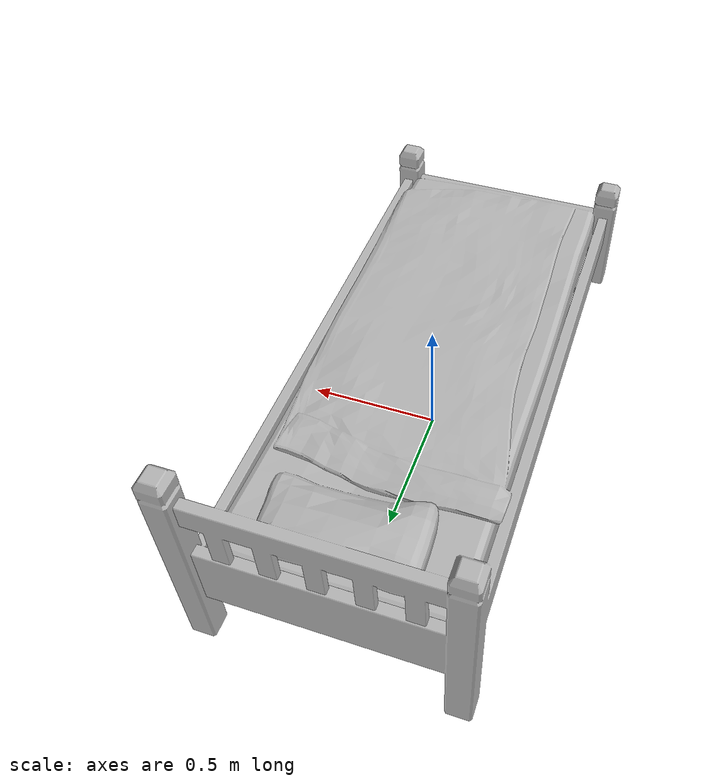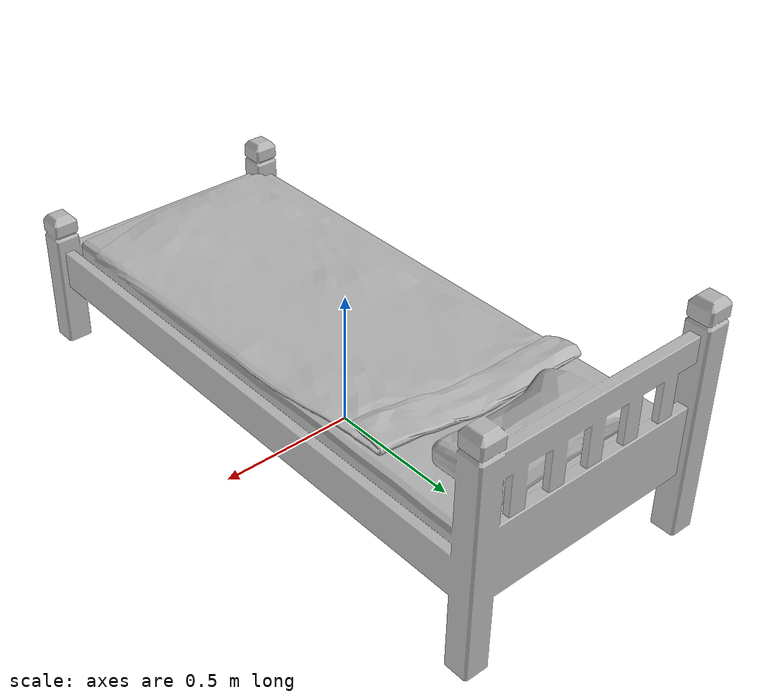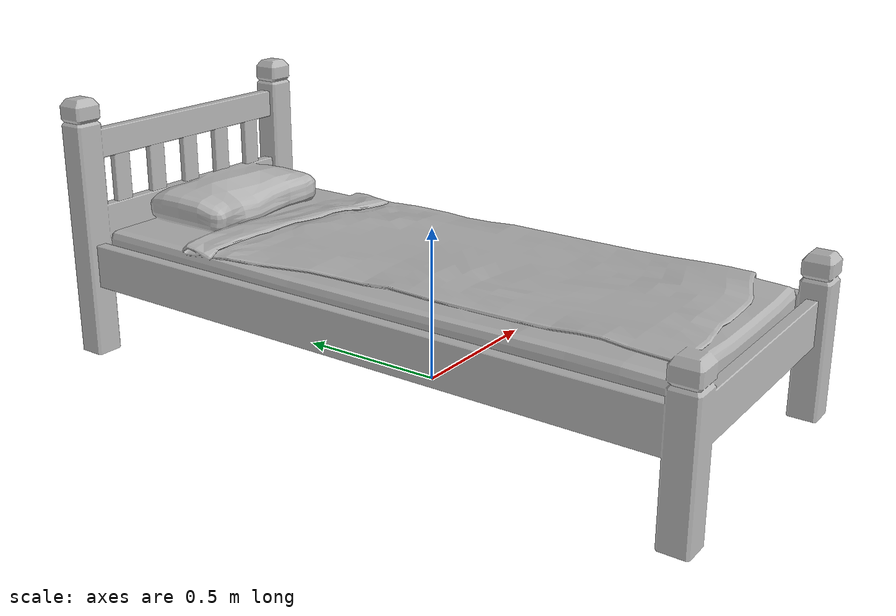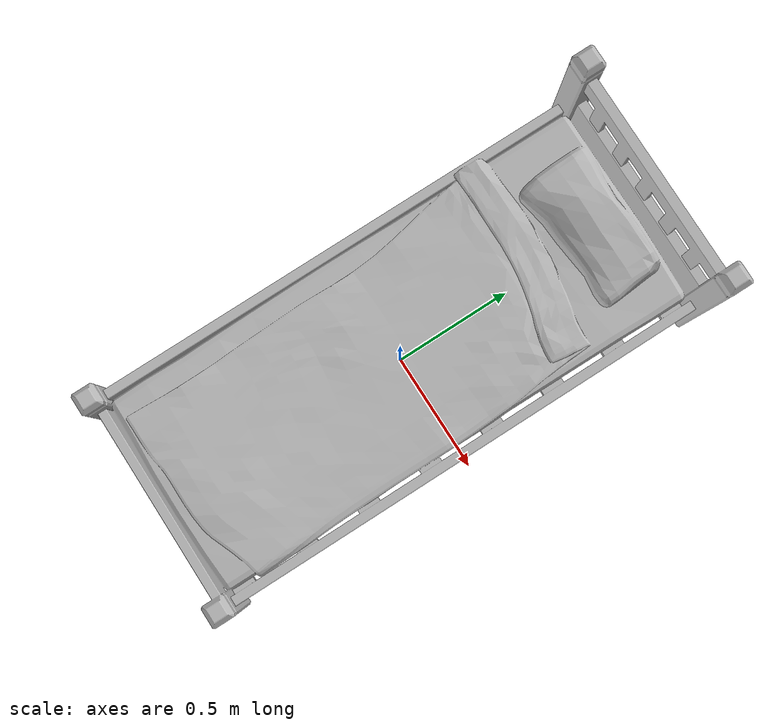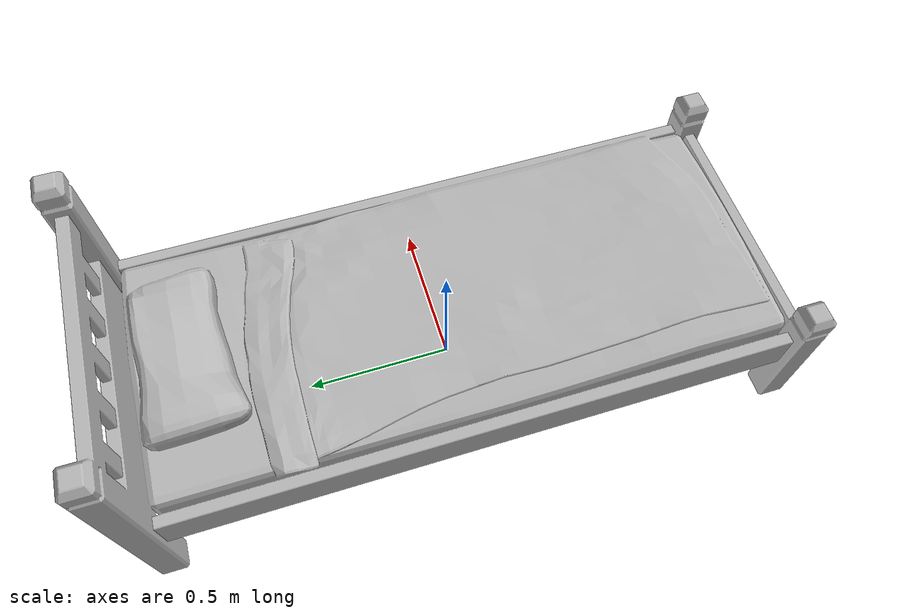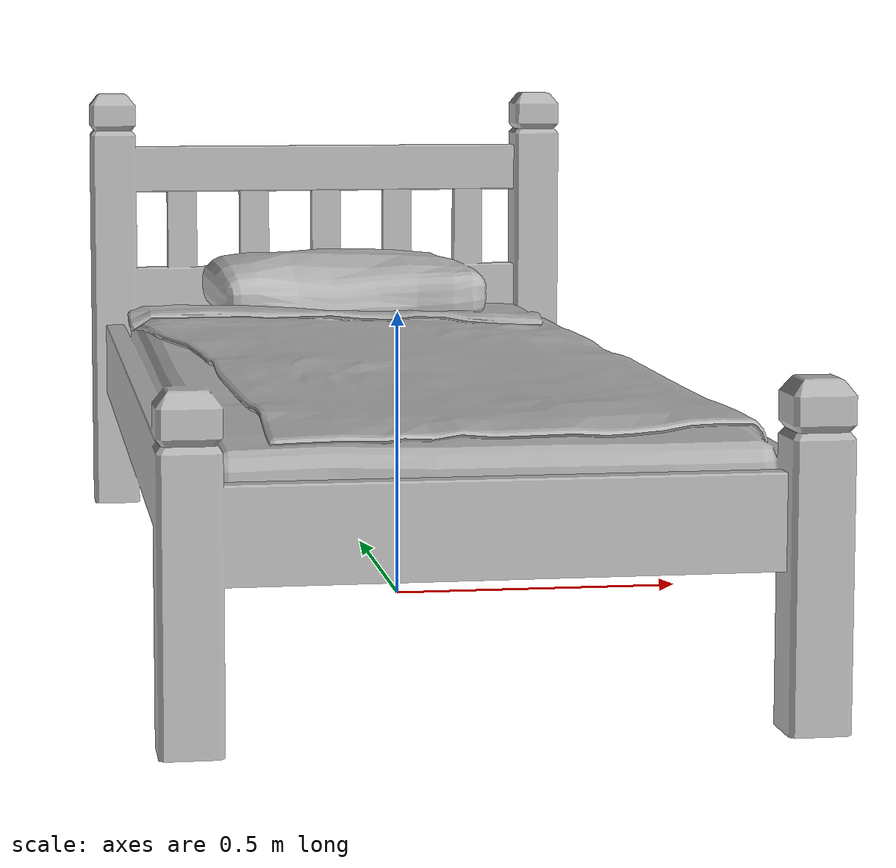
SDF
<?xml version="1.0" ?>
<sdf version="1.7">
  <model name="old_bed">
    <static>true</static>

    <link name="link">
      <visual name="visual">
        <geometry>
          <mesh>
            <uri>model://old_bed/old_bed.dae</uri>
            <scale>1.25 1.25 1.25</scale>
          </mesh>
        </geometry>
      </visual>

      <collision name="collision">
        <geometry>
          <mesh>
            <uri>model://old_bed/old_bed.dae</uri>
          </mesh>
        </geometry>
      </collision>
    </link>
  </model>
</sdf>
